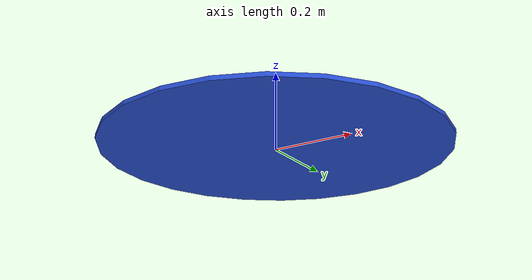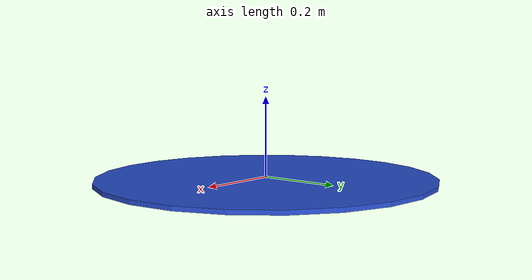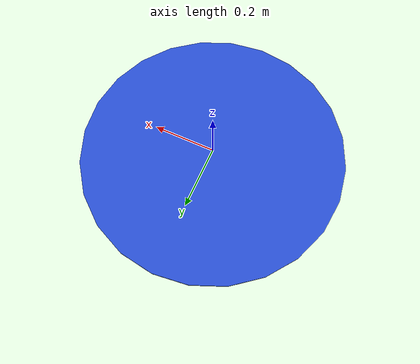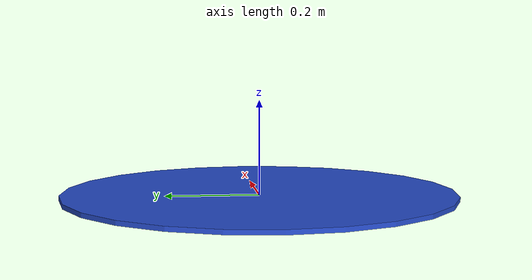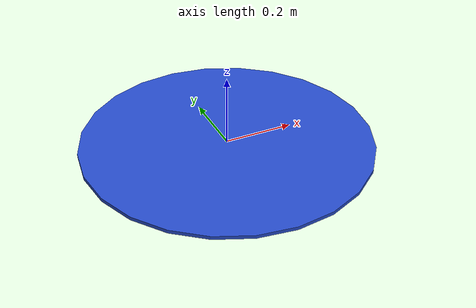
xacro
<?xml version="1.0"?>
<robot name="testing" xmlns:xacro="http://ros.org/wiki/xacro">
	<xacro:include filename="$(cwd)/link4_inertial.urdf.xacro"/>
	<xacro:include filename="$(cwd)/link5_inertial.urdf.xacro"/>
    <xacro:macro name="blue_shape" params="name *shape">
      <link name="${name}">
          <visual>
              <geometry>
                  <xacro:insert_block name="shape" />
              </geometry>
              <material name="blue"/>
          </visual>
          <collision>
              <geometry>
                  <xacro:insert_block name="shape" />
              </geometry>
          </collision>
      </link>
     </xacro:macro>

   <xacro:blue_shape name="base_link">
        <cylinder radius=".42" length=".01" />
   </xacro:blue_shape>
</robot>

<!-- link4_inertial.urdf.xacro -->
<robot
		name="link4" xmlns:xacro="http://ros.org/wiki/xacro">
    <inertial>
      <origin
        xyz="-5.9739E-14 -2.8013999999887E-06 0.18449"
        rpy="0 0 0" />
      <mass
        value="11.024" />
      <inertia
        ixx="1.04704842520385"
        ixy="0.00134671229464565"
        ixz="-2.37066307853063E-13"
        iyy="1.04790395781747"
        iyz="1.57581187945355E-05"
        izz="0.0232013100878432" />
    </inertial>
</robot>
